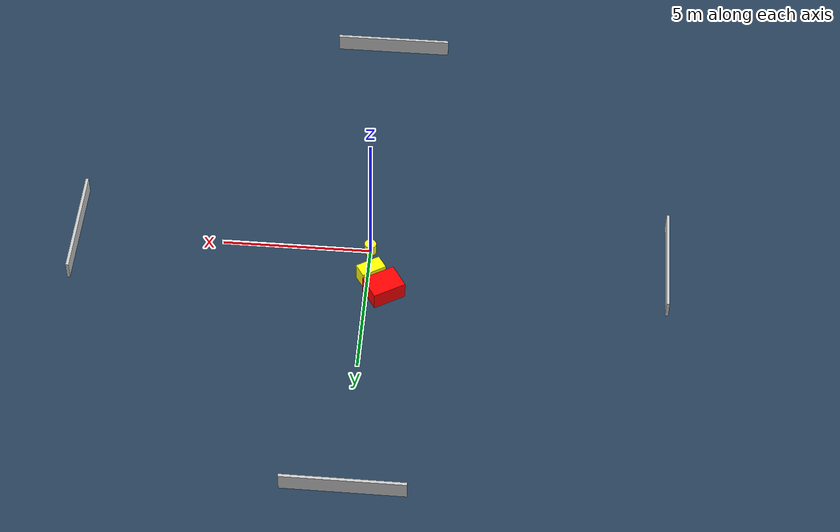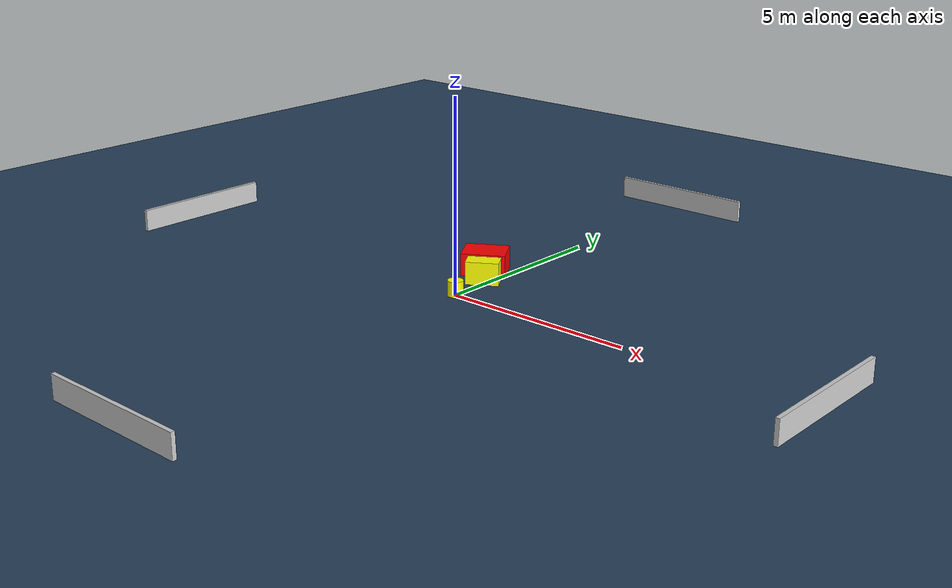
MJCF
<?xml version="1.0" ?>
<mujoco model="generated_environment">
  <option timestep="0.01" integrator="RK4" cone="elliptic"/>
  <default>
    <geom density="1"/>
  </default>
  <asset>
    <texture builtin="gradient" height="3072" name="skybox" rgb1="0.3 0.5 0.7" rgb2="0 0 0" type="skybox" width="512"/>
    <texture builtin="checker" height="300" name="groundplane" rgb1="0.2 0.3 0.4" rgb2="0.1 0.2 0.3" type="2d" width="300"/>
    <material name="groundplane" reflectance="0.2" texrepeat="5 5" texture="groundplane"/>
  </asset>
  <worldbody>
    <light dir="0 0 -1" directional="true" pos="0 0 1.5"/>
    <geom condim="3" friction="0.5 0.005 0.001" material="groundplane" name="floor" pos="0 0 0" size="0 0 0.05" type="plane"/>
    <body name="walls">
      <geom name="wall_1" condim="4" pos="-10.0 0.0 0.3" rgba="0.800000011920929 0.800000011920929 0.800000011920929 1.0" size="0.05 2.0 0.3" type="box"/>
      <geom name="wall_2" condim="4" pos="10.0 0.0 0.3" rgba="0.800000011920929 0.800000011920929 0.800000011920929 1.0" size="0.05 2.0 0.3" type="box"/>
      <geom name="wall_3" condim="4" pos="0.0 -10.0 0.3" rgba="0.800000011920929 0.800000011920929 0.800000011920929 1.0" size="2.0 0.05 0.3" type="box"/>
      <geom name="wall_4" condim="4" pos="0.0 10.0 0.3" rgba="0.800000011920929 0.800000011920929 0.800000011920929 1.0" size="2.0 0.05 0.3" type="box"/>
    </body>
    <body name="robot">
      <joint name="joint_x" type="slide" pos="0 0 0" axis="1 0 0"/>
      <joint name="joint_y" type="slide" pos="0 0 0" axis="0 1 0"/>
      <geom name="robot" type="cylinder" pos="0.0 0.0 0.2" size="0.2 0.2 0.0" mass="5.0" friction="1.0 0.005 0.0001" condim="4" rgba="1.0 1.0 0.0 1.0"/>
    </body>
    <body name="obstacle_1_movable">
      <geom name="obstacle_1_movable" condim="4" pos="-0.118182062311329 1.1770948137417583 0.3" euler="0 0 122.36068204734273" friction="0.0 0.005 0.001" rgba="1.0 1.0 0.0 1.0" size="0.2511118653627899 0.4299162582885024 0.3" type="box" mass="0.1"/>
      <joint type="free"/>
    </body>
    <body name="obstacle_2_static">
      <geom name="obstacle_2_static" condim="4" pos="-0.6009078152288887 1.819284781972141 0.3" euler="0 0 211.54174599932776" friction="0.0 0.005 0.001" rgba="1.0 0.0 0.0 1.0" size="0.5728176895595236 0.4395089368629988 0.3" type="box"/>
    </body>
  </worldbody>
  <actuator>
    <motor name="actuator_x" joint="joint_x" gear="1" ctrlrange="-1 1"/>
    <motor name="actuator_y" joint="joint_y" gear="1" ctrlrange="-1 1"/>
  </actuator>
</mujoco>
